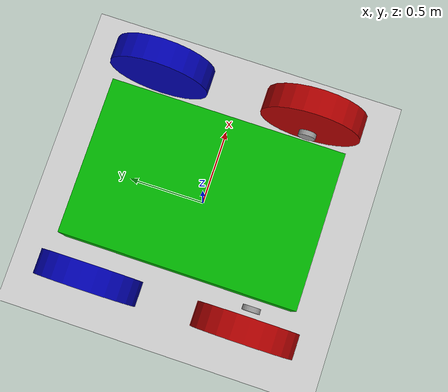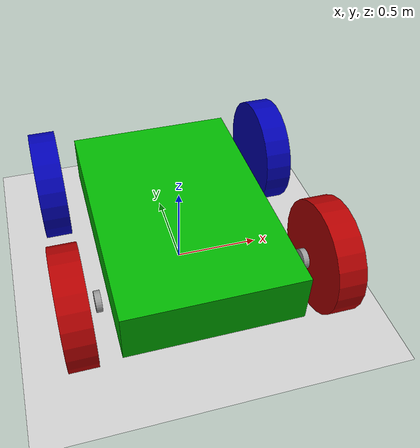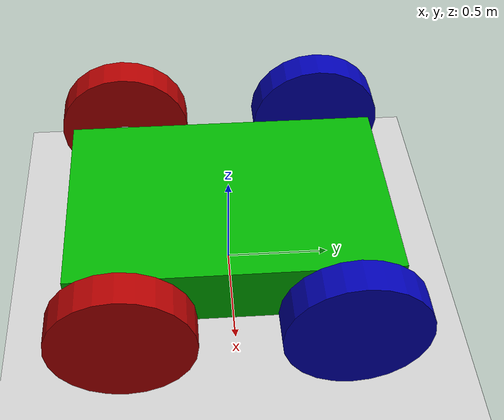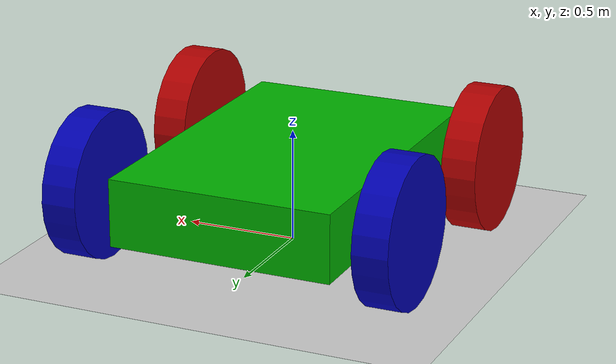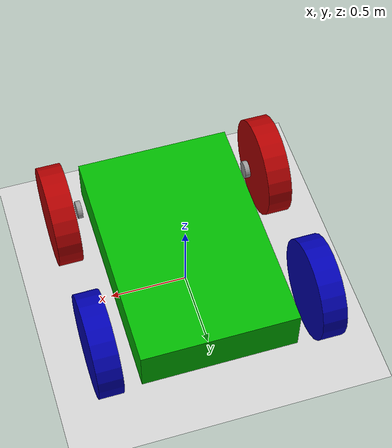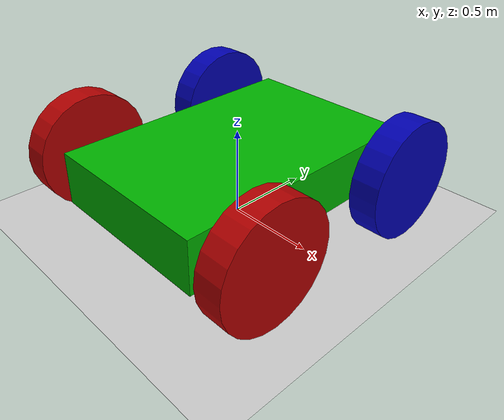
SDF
<sdf version="1.6">
 <world name="default">
  <model name="ground_plane">
   <static>1</static>
   <link name="link">
    <collision name="collision">
     <geometry><plane><normal>0 0 1</normal><size>100 100</size></plane></geometry>
     <surface><friction><ode><mu>100</mu><mu2>50</mu2></ode></friction></surface>
    </collision>
    <visual name="visual">
     <cast_shadows>0</cast_shadows>
     <geometry><plane><normal>0 0 1</normal><size>100 100</size></plane></geometry>
     <material>
      <script><uri>file://media/materials/scripts/gazebo.material</uri><name>Gazebo/Grey</name></script>
     </material>
    </visual>
   </link>
  </model>
  <model name="car2">
   <link name="link_0">
    <pose>0 0 0.3 0 -0 0</pose>
    <inertial>
     <mass>1</mass>
     <inertia>
      <ixx>0.166667</ixx>
      <ixy>0</ixy>
      <ixz>0</ixz>
      <iyy>0.166667</iyy>
      <iyz>0</iyz>
      <izz>0.166667</izz>
     </inertia>
    </inertial>
    <visual name="visual">
     <geometry><box><size>1 1.5 0.3</size></box></geometry>
     <material>
      <lighting>1</lighting>
      <script><uri>file://media/materials/scripts/gazebo.material</uri><name>Gazebo/Grey</name></script>
      <ambient>0 0.3 0 1</ambient>
      <diffuse>0 0.7 0 1</diffuse>
      <specular>0 0.01 0 1</specular>
      <emissive>0 0 0 1</emissive>
      <shader type="vertex"><normal_map>__default__</normal_map></shader>
     </material>
    </visual>
    <collision name="collision">
     <geometry><box><size>1 1.5 0.3</size></box></geometry>
     <surface>
      <friction>
       <ode><mu>1</mu><mu2>1</mu2><fdir1>0 0 0</fdir1><slip1>0</slip1><slip2>0</slip2></ode>
       <torsional>
        <coefficient>1</coefficient>
        <patch_radius>0</patch_radius>
        <surface_radius>0</surface_radius>
        <use_patch_radius>1</use_patch_radius>
        <ode><slip>0</slip></ode>
       </torsional>
      </friction>
      <bounce><restitution_coefficient>0</restitution_coefficient><threshold>1e+06</threshold></bounce>
      <contact>
       <collide_without_contact>0</collide_without_contact>
       <collide_without_contact_bitmask>1</collide_without_contact_bitmask>
       <collide_bitmask>1</collide_bitmask>
       <ode>
        <soft_cfm>0</soft_cfm>
        <soft_erp>0.2</soft_erp>
        <kp>1e+13</kp>
        <kd>1</kd>
        <max_vel>0.01</max_vel>
        <min_depth>0</min_depth>
       </ode>
       <bullet>
        <split_impulse>1</split_impulse>
        <split_impulse_penetration_threshold>-0.01</split_impulse_penetration_threshold>
        <soft_cfm>0</soft_cfm>
        <soft_erp>0.2</soft_erp>
        <kp>1e+13</kp>
        <kd>1</kd>
       </bullet>
      </contact>
     </surface>
    </collision>
   </link>
   <link name="link_0_0">
    <pose>-0.569 -0.5 0.327087 3.14159 1.57079 3.14159</pose>
    <inertial>
     <mass>0.001</mass>
     <inertia><ixx>3.9e-07</ixx><ixy>0</ixy><ixz>0</ixz><iyy>3.9e-07</iyy><iyz>0</iyz><izz>7e-07</izz></inertia>
    </inertial>
    <visual name="visual">
     <geometry><cylinder><radius>0.0570908</radius><length>0.0329341</length></cylinder></geometry>
     <material>
      <lighting>1</lighting>
      <script><uri>file://media/materials/scripts/gazebo.material</uri><name>Gazebo/Grey</name></script>
      <ambient>0.3 0.3 0.3 1</ambient>
      <diffuse>0.7 0.7 0.7 1</diffuse>
      <specular>0.01 0.01 0.01 1</specular>
      <emissive>0 0 0 1</emissive>
      <shader type="vertex"><normal_map>__default__</normal_map></shader>
     </material>
    </visual>
    <collision name="collision">
     <geometry><cylinder><radius>0.057091</radius><length>0.032934</length></cylinder></geometry>
     <surface>
      <friction>
       <ode><mu>1</mu><mu2>1</mu2><fdir1>0 0 0</fdir1><slip1>0</slip1><slip2>0</slip2></ode>
       <torsional>
        <coefficient>1</coefficient>
        <patch_radius>0</patch_radius>
        <surface_radius>0</surface_radius>
        <use_patch_radius>1</use_patch_radius>
        <ode><slip>0</slip></ode>
       </torsional>
      </friction>
      <bounce><restitution_coefficient>0</restitution_coefficient><threshold>1e+06</threshold></bounce>
      <contact>
       <collide_without_contact>0</collide_without_contact>
       <collide_without_contact_bitmask>1</collide_without_contact_bitmask>
       <collide_bitmask>1</collide_bitmask>
       <ode>
        <soft_cfm>0</soft_cfm>
        <soft_erp>0.2</soft_erp>
        <kp>1e+13</kp>
        <kd>1</kd>
        <max_vel>0.01</max_vel>
        <min_depth>0</min_depth>
       </ode>
       <bullet>
        <split_impulse>1</split_impulse>
        <split_impulse_penetration_threshold>-0.01</split_impulse_penetration_threshold>
        <soft_cfm>0</soft_cfm>
        <soft_erp>0.2</soft_erp>
        <kp>1e+13</kp>
        <kd>1</kd>
       </bullet>
      </contact>
     </surface>
    </collision>
   </link>
   <link name="link_0_0_clone">
    <pose>0.569086 -0.5 0.327087 3.14159 1.57079 3.14159</pose>
    <inertial>
     <mass>0.001</mass>
     <inertia><ixx>3.9e-07</ixx><ixy>0</ixy><ixz>0</ixz><iyy>3.9e-07</iyy><iyz>0</iyz><izz>7e-07</izz></inertia>
    </inertial>
    <visual name="visual_0">
     <geometry><cylinder><radius>0.0570908</radius><length>0.0329341</length></cylinder></geometry>
     <material>
      <lighting>1</lighting>
      <script><uri>file://media/materials/scripts/gazebo.material</uri><name>Gazebo/Grey</name></script>
      <ambient>0.3 0.3 0.3 1</ambient>
      <diffuse>0.7 0.7 0.7 1</diffuse>
      <specular>0.01 0.01 0.01 1</specular>
      <emissive>0 0 0 1</emissive>
      <shader type="vertex"><normal_map>__default__</normal_map></shader>
     </material>
    </visual>
    <collision name="collision">
     <geometry><cylinder><radius>0.057091</radius><length>0.032934</length></cylinder></geometry>
     <surface>
      <friction>
       <ode><mu>1</mu><mu2>1</mu2><fdir1>0 0 0</fdir1><slip1>0</slip1><slip2>0</slip2></ode>
       <torsional>
        <coefficient>1</coefficient>
        <patch_radius>0</patch_radius>
        <surface_radius>0</surface_radius>
        <use_patch_radius>1</use_patch_radius>
        <ode><slip>0</slip></ode>
       </torsional>
      </friction>
      <bounce><restitution_coefficient>0</restitution_coefficient><threshold>1e+06</threshold></bounce>
      <contact>
       <collide_without_contact>0</collide_without_contact>
       <collide_without_contact_bitmask>1</collide_without_contact_bitmask>
       <collide_bitmask>1</collide_bitmask>
       <ode>
        <soft_cfm>0</soft_cfm>
        <soft_erp>0.2</soft_erp>
        <kp>1e+13</kp>
        <kd>1</kd>
        <max_vel>0.01</max_vel>
        <min_depth>0</min_depth>
       </ode>
       <bullet>
        <split_impulse>1</split_impulse>
        <split_impulse_penetration_threshold>-0.01</split_impulse_penetration_threshold>
        <soft_cfm>0</soft_cfm>
        <soft_erp>0.2</soft_erp>
        <kp>1e+13</kp>
        <kd>1</kd>
       </bullet>
      </contact>
     </surface>
    </collision>
   </link>
   <link name="link_1">
    <pose>-0.7 0.5 0.326 3.14159 1.57079 3.14159</pose>
    <inertial>
     <mass>0.0660132</mass>
     <inertia>
      <ixx>0.00187782</ixx>
      <ixy>0</ixy>
      <ixz>0</ixz>
      <iyy>0.00187782</iyy>
      <iyz>0</iyz>
      <izz>0.0034872</izz>
     </inertia>
    </inertial>
    <visual name="visual">
     <geometry><cylinder><radius>0.32504</radius><length>0.156176</length></cylinder></geometry>
     <material>
      <lighting>1</lighting>
      <script><uri>file://media/materials/scripts/gazebo.material</uri><name>Gazebo/Grey</name></script>
      <ambient>0 0 0.3 1</ambient>
      <diffuse>0 0 0.7 1</diffuse>
      <specular>0 0 0.01 1</specular>
      <emissive>0 0 0 1</emissive>
      <shader type="vertex"><normal_map>__default__</normal_map></shader>
     </material>
    </visual>
    <collision name="collision">
     <geometry><cylinder><radius>0.32504</radius><length>0.156176</length></cylinder></geometry>
     <surface>
      <friction>
       <ode><mu>1</mu><mu2>1</mu2><fdir1>0 0 0</fdir1><slip1>0</slip1><slip2>0</slip2></ode>
       <torsional>
        <coefficient>1</coefficient>
        <patch_radius>0</patch_radius>
        <surface_radius>0</surface_radius>
        <use_patch_radius>1</use_patch_radius>
        <ode><slip>0</slip></ode>
       </torsional>
      </friction>
      <bounce><restitution_coefficient>0</restitution_coefficient><threshold>1e+06</threshold></bounce>
      <contact>
       <collide_without_contact>0</collide_without_contact>
       <collide_without_contact_bitmask>1</collide_without_contact_bitmask>
       <collide_bitmask>1</collide_bitmask>
       <ode>
        <soft_cfm>0</soft_cfm>
        <soft_erp>0.2</soft_erp>
        <kp>1e+13</kp>
        <kd>1</kd>
        <max_vel>0.01</max_vel>
        <min_depth>0</min_depth>
       </ode>
       <bullet>
        <split_impulse>1</split_impulse>
        <split_impulse_penetration_threshold>-0.01</split_impulse_penetration_threshold>
        <soft_cfm>0</soft_cfm>
        <soft_erp>0.2</soft_erp>
        <kp>1e+13</kp>
        <kd>1</kd>
       </bullet>
      </contact>
     </surface>
    </collision>
   </link>
   <link name="link_1_clone">
    <pose>0.7 0.5 0.326 3.14159 1.57079 3.14159</pose>
    <inertial>
     <mass>0.0660132</mass>
     <inertia>
      <ixx>0.00187782</ixx>
      <ixy>0</ixy>
      <ixz>0</ixz>
      <iyy>0.00187782</iyy>
      <iyz>0</iyz>
      <izz>0.0034872</izz>
     </inertia>
    </inertial>
    <visual name="visual">
     <geometry><cylinder><radius>0.32504</radius><length>0.156176</length></cylinder></geometry>
     <material>
      <lighting>1</lighting>
      <script><uri>file://media/materials/scripts/gazebo.material</uri><name>Gazebo/Grey</name></script>
      <ambient>0 0 0.3 1</ambient>
      <diffuse>0 0 0.7 1</diffuse>
      <specular>0 0 0.01 1</specular>
      <emissive>0 0 0 1</emissive>
      <shader type="vertex"><normal_map>__default__</normal_map></shader>
     </material>
    </visual>
    <collision name="collision">
     <geometry><cylinder><radius>0.32504</radius><length>0.156176</length></cylinder></geometry>
     <surface>
      <friction>
       <ode><mu>1</mu><mu2>1</mu2><fdir1>0 0 0</fdir1><slip1>0</slip1><slip2>0</slip2></ode>
       <torsional>
        <coefficient>1</coefficient>
        <patch_radius>0</patch_radius>
        <surface_radius>0</surface_radius>
        <use_patch_radius>1</use_patch_radius>
        <ode><slip>0</slip></ode>
       </torsional>
      </friction>
      <bounce><restitution_coefficient>0</restitution_coefficient><threshold>1e+06</threshold></bounce>
      <contact>
       <collide_without_contact>0</collide_without_contact>
       <collide_without_contact_bitmask>1</collide_without_contact_bitmask>
       <collide_bitmask>1</collide_bitmask>
       <ode>
        <soft_cfm>0</soft_cfm>
        <soft_erp>0.2</soft_erp>
        <kp>1e+13</kp>
        <kd>1</kd>
        <max_vel>0.01</max_vel>
        <min_depth>0</min_depth>
       </ode>
       <bullet>
        <split_impulse>1</split_impulse>
        <split_impulse_penetration_threshold>-0.01</split_impulse_penetration_threshold>
        <soft_cfm>0</soft_cfm>
        <soft_erp>0.2</soft_erp>
        <kp>1e+13</kp>
        <kd>1</kd>
       </bullet>
      </contact>
     </surface>
    </collision>
   </link>
   <link name="link_1_clone_0">
    <pose>-0.7 -0.5 0.326 3.14159 1.57079 3.14159</pose>
    <inertial>
     <mass>0.0660132</mass>
     <inertia>
      <ixx>0.00187782</ixx>
      <ixy>0</ixy>
      <ixz>0</ixz>
      <iyy>0.00187782</iyy>
      <iyz>0</iyz>
      <izz>0.0034872</izz>
     </inertia>
    </inertial>
    <visual name="visual">
     <geometry><cylinder><radius>0.32504</radius><length>0.156176</length></cylinder></geometry>
     <material>
      <lighting>1</lighting>
      <script><uri>file://media/materials/scripts/gazebo.material</uri><name>Gazebo/Grey</name></script>
      <ambient>0.3 0 0 1</ambient>
      <diffuse>0.7 0 0 1</diffuse>
      <specular>0.01 0 0 1</specular>
      <emissive>0 0 0 1</emissive>
      <shader type="vertex"><normal_map>__default__</normal_map></shader>
     </material>
    </visual>
    <collision name="collision">
     <geometry><cylinder><radius>0.32504</radius><length>0.156176</length></cylinder></geometry>
     <surface>
      <friction>
       <ode><mu>1</mu><mu2>1</mu2><fdir1>0 0 0</fdir1><slip1>0</slip1><slip2>0</slip2></ode>
       <torsional>
        <coefficient>1</coefficient>
        <patch_radius>0</patch_radius>
        <surface_radius>0</surface_radius>
        <use_patch_radius>1</use_patch_radius>
        <ode><slip>0</slip></ode>
       </torsional>
      </friction>
      <bounce><restitution_coefficient>0</restitution_coefficient><threshold>1e+06</threshold></bounce>
      <contact>
       <collide_without_contact>0</collide_without_contact>
       <collide_without_contact_bitmask>1</collide_without_contact_bitmask>
       <collide_bitmask>1</collide_bitmask>
       <ode>
        <soft_cfm>0</soft_cfm>
        <soft_erp>0.2</soft_erp>
        <kp>1e+13</kp>
        <kd>1</kd>
        <max_vel>0.01</max_vel>
        <min_depth>0</min_depth>
       </ode>
       <bullet>
        <split_impulse>1</split_impulse>
        <split_impulse_penetration_threshold>-0.01</split_impulse_penetration_threshold>
        <soft_cfm>0</soft_cfm>
        <soft_erp>0.2</soft_erp>
        <kp>1e+13</kp>
        <kd>1</kd>
       </bullet>
      </contact>
     </surface>
    </collision>
   </link>
   <link name="link_1_clone_1">
    <pose>0.7 -0.5 0.326 3.14159 1.57079 3.14159</pose>
    <inertial>
     <mass>0.0660132</mass>
     <inertia>
      <ixx>0.00187782</ixx>
      <ixy>0</ixy>
      <ixz>0</ixz>
      <iyy>0.00187782</iyy>
      <iyz>0</iyz>
      <izz>0.0034872</izz>
     </inertia>
    </inertial>
    <visual name="visual">
     <geometry><cylinder><radius>0.32504</radius><length>0.156176</length></cylinder></geometry>
     <material>
      <lighting>1</lighting>
      <script><uri>file://media/materials/scripts/gazebo.material</uri><name>Gazebo/Grey</name></script>
      <ambient>0.3 0 0 1</ambient>
      <diffuse>0.7 0 0 1</diffuse>
      <specular>0.01 0 0 1</specular>
      <emissive>0 0 0 1</emissive>
      <shader type="vertex"><normal_map>__default__</normal_map></shader>
     </material>
    </visual>
    <collision name="collision">
     <geometry><cylinder><radius>0.32504</radius><length>0.156176</length></cylinder></geometry>
     <surface>
      <friction>
       <ode><mu>1</mu><mu2>1</mu2><fdir1>0 0 0</fdir1><slip1>0</slip1><slip2>0</slip2></ode>
       <torsional>
        <coefficient>1</coefficient>
        <patch_radius>0</patch_radius>
        <surface_radius>0</surface_radius>
        <use_patch_radius>1</use_patch_radius>
        <ode><slip>0</slip></ode>
       </torsional>
      </friction>
      <bounce><restitution_coefficient>0</restitution_coefficient><threshold>1e+06</threshold></bounce>
      <contact>
       <collide_without_contact>0</collide_without_contact>
       <collide_without_contact_bitmask>1</collide_without_contact_bitmask>
       <collide_bitmask>1</collide_bitmask>
       <ode>
        <soft_cfm>0</soft_cfm>
        <soft_erp>0.2</soft_erp>
        <kp>1e+13</kp>
        <kd>1</kd>
        <max_vel>0.01</max_vel>
        <min_depth>0</min_depth>
       </ode>
       <bullet>
        <split_impulse>1</split_impulse>
        <split_impulse_penetration_threshold>-0.01</split_impulse_penetration_threshold>
        <soft_cfm>0</soft_cfm>
        <soft_erp>0.2</soft_erp>
        <kp>1e+13</kp>
        <kd>1</kd>
       </bullet>
      </contact>
     </surface>
    </collision>
   </link>
   <joint name="link_0_0_JOINT_3" type="revolute">
    <parent>link_0_0</parent>
    <child>link_1_clone_0</child>
    <axis>
     <xyz>0 0 1</xyz>
     <use_parent_model_frame>0</use_parent_model_frame>
     <limit>
      <lower>-1.79769e+308</lower>
      <upper>1.79769e+308</upper>
      <effort>-1</effort>
      <velocity>-1</velocity>
     </limit>
     <dynamics>
      <spring_reference>0</spring_reference>
      <spring_stiffness>0</spring_stiffness>
      <damping>10</damping>
      <friction>0</friction>
     </dynamics>
    </axis>
    <physics>
     <ode>
      <implicit_spring_damper>1</implicit_spring_damper>
      <limit><cfm>0</cfm><erp>0.2</erp></limit>
      <suspension><cfm>0</cfm><erp>0.2</erp></suspension>
     </ode>
    </physics>
   </joint>
   <joint name="link_0_0_clone_JOINT_1" type="revolute">
    <parent>link_0_0_clone</parent>
    <child>link_1_clone_1</child>
    <axis>
     <xyz>0 0 1</xyz>
     <use_parent_model_frame>0</use_parent_model_frame>
     <limit>
      <lower>-1.79769e+308</lower>
      <upper>1.79769e+308</upper>
      <effort>-1</effort>
      <velocity>-1</velocity>
     </limit>
     <dynamics>
      <spring_reference>0</spring_reference>
      <spring_stiffness>0</spring_stiffness>
      <damping>10</damping>
      <friction>0</friction>
     </dynamics>
    </axis>
    <physics>
     <ode>
      <implicit_spring_damper>1</implicit_spring_damper>
      <limit><cfm>0</cfm><erp>0.2</erp></limit>
      <suspension><cfm>0</cfm><erp>0.2</erp></suspension>
     </ode>
    </physics>
   </joint>
   <joint name="link_0_JOINT_0_0" type="revolute">
    <parent>link_0</parent>
    <child>link_1</child>
    <axis>
     <xyz>0 0 1</xyz>
     <use_parent_model_frame>0</use_parent_model_frame>
     <limit>
      <lower>-1.79769e+308</lower>
      <upper>1.79769e+308</upper>
      <effort>-1</effort>
      <velocity>-1</velocity>
     </limit>
     <dynamics>
      <spring_reference>0</spring_reference>
      <spring_stiffness>0</spring_stiffness>
      <damping>10</damping>
      <friction>0</friction>
     </dynamics>
    </axis>
    <physics>
     <ode>
      <implicit_spring_damper>1</implicit_spring_damper>
      <limit><cfm>0</cfm><erp>0.2</erp></limit>
      <suspension><cfm>0</cfm><erp>0.2</erp></suspension>
     </ode>
    </physics>
   </joint>
   <joint name="link_0_JOINT_0" type="revolute">
    <parent>link_0</parent>
    <child>link_0_0_clone</child>
    <axis>
     <xyz>-1 0 0</xyz>
     <use_parent_model_frame>0</use_parent_model_frame>
     <limit><lower>-1</lower><upper>1</upper><effort>-1</effort><velocity>-1</velocity></limit>
     <dynamics>
      <spring_reference>0</spring_reference>
      <spring_stiffness>0</spring_stiffness>
      <damping>10</damping>
      <friction>0</friction>
     </dynamics>
    </axis>
    <physics>
     <ode>
      <implicit_spring_damper>1</implicit_spring_damper>
      <limit><cfm>0</cfm><erp>0.2</erp></limit>
      <suspension><cfm>0</cfm><erp>0.2</erp></suspension>
     </ode>
    </physics>
   </joint>
   <joint name="link_0_JOINT_1" type="revolute">
    <parent>link_0</parent>
    <child>link_1_clone</child>
    <axis>
     <xyz>0 0 1</xyz>
     <use_parent_model_frame>0</use_parent_model_frame>
     <limit>
      <lower>-1.79769e+308</lower>
      <upper>1.79769e+308</upper>
      <effort>-1</effort>
      <velocity>-1</velocity>
     </limit>
     <dynamics>
      <spring_reference>0</spring_reference>
      <spring_stiffness>0</spring_stiffness>
      <damping>10</damping>
      <friction>0</friction>
     </dynamics>
    </axis>
    <physics>
     <ode>
      <implicit_spring_damper>1</implicit_spring_damper>
      <limit><cfm>0</cfm><erp>0.2</erp></limit>
      <suspension><cfm>0</cfm><erp>0.2</erp></suspension>
     </ode>
    </physics>
   </joint>
   <joint name="link_0_JOINT_2_0" type="revolute">
    <parent>link_0</parent>
    <child>link_0_0</child>
    <axis>
     <xyz>-1 0 0</xyz>
     <use_parent_model_frame>0</use_parent_model_frame>
     <limit><lower>-1</lower><upper>1</upper><effort>-1</effort><velocity>-1</velocity></limit>
     <dynamics>
      <spring_reference>0</spring_reference>
      <spring_stiffness>0</spring_stiffness>
      <damping>10</damping>
      <friction>0</friction>
     </dynamics>
    </axis>
    <physics>
     <ode>
      <implicit_spring_damper>1</implicit_spring_damper>
      <limit><cfm>0</cfm><erp>0.2</erp></limit>
      <suspension><cfm>0</cfm><erp>0.2</erp></suspension>
     </ode>
    </physics>
   </joint>
   <plugin name="push" filename="libpush.so"/>
   <static>0</static>
   <self_collide>1</self_collide>
  </model>
 </world>
</sdf>
